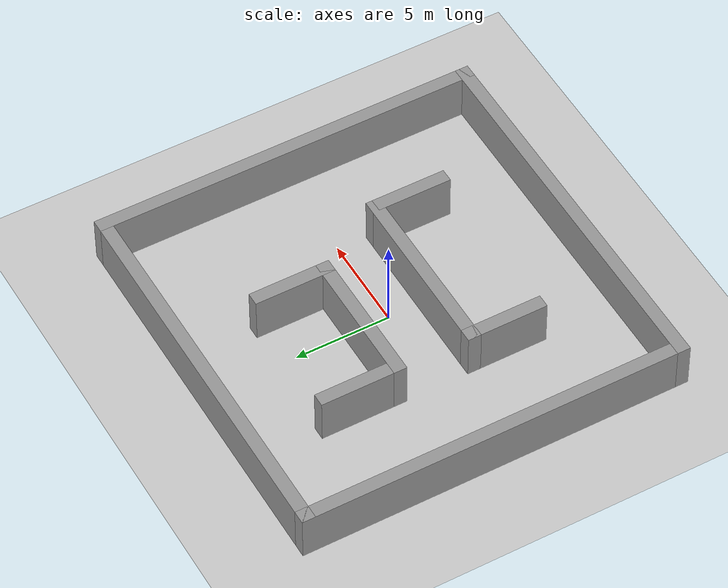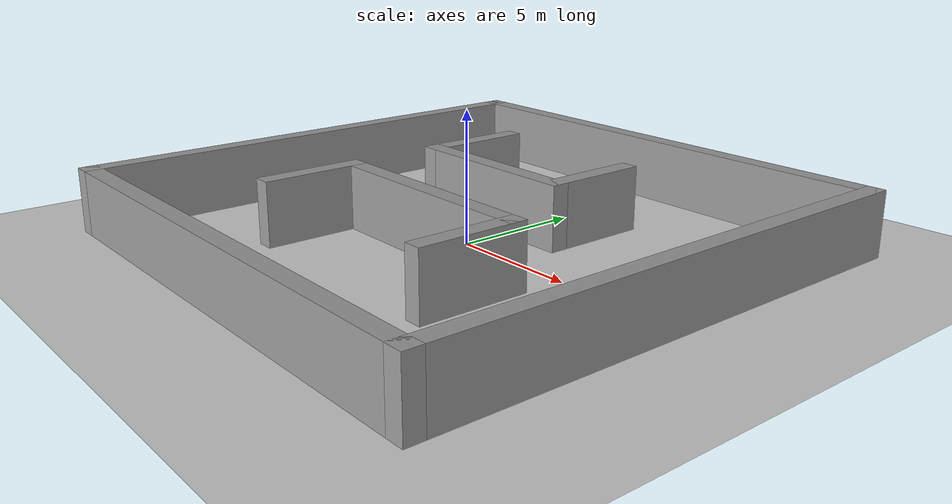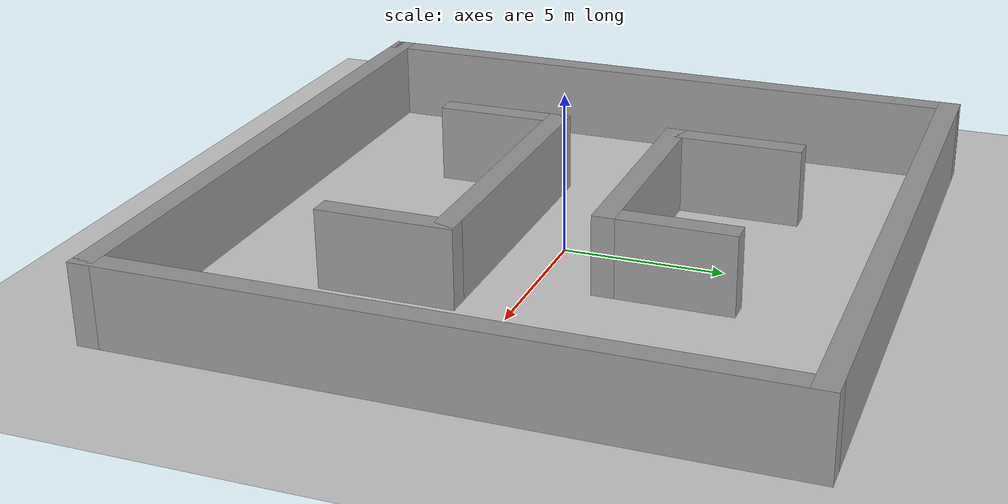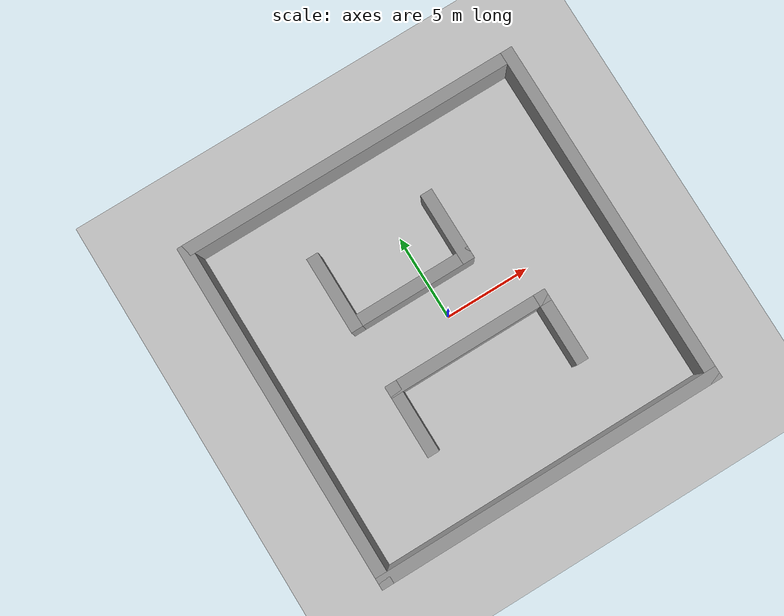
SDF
<sdf version="1.7">
 <world name="default">
  <light name="sun" type="directional">
   <pose>0 0 10 0 -0 0</pose>
   <diffuse>0.8 0.8 0.8 1</diffuse>
   <specular>0.2 0.2 0.2 1</specular>
   <attenuation>
    <range>1000</range>
    <constant>0.9</constant>
    <linear>0.01</linear>
    <quadratic>0.001</quadratic>
   </attenuation>
   <direction>-0.5 0.1 -0.9</direction>
   <spot><inner_angle>0</inner_angle><outer_angle>0</outer_angle><falloff>0</falloff></spot>
  </light>
  <model name="ground_plane">
   <static>1</static>
   <link name="link">
    <collision name="collision">
     <geometry><plane><normal>0 0 1</normal><size>100 100</size></plane></geometry>
     <surface><friction><ode><mu>100</mu><mu2>50</mu2></ode></friction></surface>
    </collision>
    <visual name="visual">
     <cast_shadows>0</cast_shadows>
     <geometry><plane><normal>0 0 1</normal><size>100 100</size></plane></geometry>
     <material>
      <script><uri>file://media/materials/scripts/gazebo.material</uri><name>Gazebo/Grey</name></script>
     </material>
    </visual>
   </link>
  </model>
  <gravity>0 0 -9.8</gravity>
  <magnetic_field>6e-06 2.3e-05 -4.2e-05</magnetic_field>
  <atmosphere type="adiabatic"/>
  <physics type="ode">
   <max_step_size>0.001</max_step_size>
   <real_time_factor>1</real_time_factor>
   <real_time_update_rate>1000</real_time_update_rate>
  </physics>
  <scene><ambient>0.4 0.4 0.4 1</ambient><background>0.7 0.7 0.7 1</background><shadows>1</shadows></scene>
  <spherical_coordinates>
   <surface_model>EARTH_WGS84</surface_model>
   <latitude_deg>0</latitude_deg>
   <longitude_deg>0</longitude_deg>
   <elevation>0</elevation>
   <heading_deg>0</heading_deg>
  </spherical_coordinates>
  <model name="demo07">
   <link name="Wall_0">
    <collision name="Wall_0_Collision">
     <geometry><box><size>20.7 0.7 2.5</size></box></geometry>
     <pose>0 0 1.25 0 -0 0</pose>
    </collision>
    <visual name="Wall_0_Visual">
     <pose>0 0 1.25 0 -0 0</pose>
     <geometry><box><size>20.7 0.7 2.5</size></box></geometry>
     <material>
      <script><uri>file://media/materials/scripts/gazebo.material</uri><name>Gazebo/Grey</name></script>
      <ambient>1 1 1 1</ambient>
     </material>
     <meta><layer>0</layer></meta>
    </visual>
    <pose>-10 0 0 0 -0 1.5708</pose>
   </link>
   <link name="Wall_17">
    <collision name="Wall_17_Collision">
     <geometry><box><size>4.55041 0.7 2.5</size></box></geometry>
     <pose>0 0 1.25 0 -0 0</pose>
    </collision>
    <visual name="Wall_17_Visual">
     <pose>0 0 1.25 0 -0 0</pose>
     <geometry><box><size>4.55041 0.7 2.5</size></box></geometry>
     <material>
      <script><uri>file://media/materials/scripts/gazebo.material</uri><name>Gazebo/Grey</name></script>
      <ambient>1 1 1 1</ambient>
     </material>
     <meta><layer>0</layer></meta>
    </visual>
    <pose>-4.498 4.025 0 0 -0 -1.5708</pose>
   </link>
   <link name="Wall_18">
    <collision name="Wall_18_Collision">
     <geometry><box><size>7.55018 0.7 2.5</size></box></geometry>
     <pose>0 0 1.25 0 -0 0</pose>
    </collision>
    <visual name="Wall_18_Visual">
     <pose>0 0 1.25 0 -0 0</pose>
     <geometry><box><size>7.55018 0.7 2.5</size></box></geometry>
     <material>
      <script><uri>file://media/materials/scripts/gazebo.material</uri><name>Gazebo/Grey</name></script>
      <ambient>1 1 1 1</ambient>
     </material>
     <meta><layer>0</layer></meta>
    </visual>
    <pose>-1.073 2.1 0 0 -0 0</pose>
   </link>
   <link name="Wall_19">
    <collision name="Wall_19_Collision">
     <geometry><box><size>4.29959 0.7 2.5</size></box></geometry>
     <pose>0 0 1.25 0 -0 0</pose>
    </collision>
    <visual name="Wall_19_Visual">
     <pose>0 0 1.25 0 -0 0</pose>
     <geometry><box><size>4.29959 0.7 2.5</size></box></geometry>
     <material>
      <script><uri>file://media/materials/scripts/gazebo.material</uri><name>Gazebo/Grey</name></script>
      <ambient>1 1 1 1</ambient>
     </material>
     <meta><layer>0</layer></meta>
    </visual>
    <pose>2.352 3.9 0 0 -0 1.5708</pose>
   </link>
   <link name="Wall_2">
    <collision name="Wall_2_Collision">
     <geometry><box><size>20.7 0.7 2.5</size></box></geometry>
     <pose>0 0 1.25 0 -0 0</pose>
    </collision>
    <visual name="Wall_2_Visual">
     <pose>0 0 1.25 0 -0 0</pose>
     <geometry><box><size>20.7 0.7 2.5</size></box></geometry>
     <material>
      <script><uri>file://media/materials/scripts/gazebo.material</uri><name>Gazebo/Grey</name></script>
      <ambient>1 1 1 1</ambient>
     </material>
     <meta><layer>0</layer></meta>
    </visual>
    <pose>0 10 0 0 -0 0</pose>
   </link>
   <link name="Wall_21">
    <collision name="Wall_21_Collision">
     <geometry><box><size>9.1 0 2.5</size></box></geometry>
     <pose>0 0 1.25 0 -0 0</pose>
    </collision>
    <visual name="Wall_21_Visual">
     <pose>0 0 1.25 0 -0 0</pose>
     <geometry><box><size>9.1 0 2.5</size></box></geometry>
     <material>
      <script><uri>file://media/materials/scripts/gazebo.material</uri><name>Gazebo/Grey</name></script>
      <ambient>1 1 1 1</ambient>
     </material>
     <meta><layer>0</layer></meta>
    </visual>
    <pose>0.052 -1.901 0 0 -0 0</pose>
   </link>
   <link name="Wall_22">
    <collision name="Wall_22_Collision">
     <geometry><box><size>4.30015 0.7 2.5</size></box></geometry>
     <pose>0 0 1.25 0 -0 0</pose>
    </collision>
    <visual name="Wall_22_Visual">
     <pose>0 0 1.25 0 -0 0</pose>
     <geometry><box><size>4.30015 0.7 2.5</size></box></geometry>
     <material>
      <script><uri>file://media/materials/scripts/gazebo.material</uri><name>Gazebo/Grey</name></script>
      <ambient>1 1 1 1</ambient>
     </material>
     <meta><layer>0</layer></meta>
    </visual>
    <pose>4.602 -3.701 0 0 -0 -1.5708</pose>
   </link>
   <link name="Wall_24">
    <collision name="Wall_24_Collision">
     <geometry><box><size>4.30015 0.7 2.5</size></box></geometry>
     <pose>0 0 1.25 0 -0 0</pose>
    </collision>
    <visual name="Wall_24_Visual">
     <pose>0 0 1.25 0 -0 0</pose>
     <geometry><box><size>4.30015 0.7 2.5</size></box></geometry>
     <material>
      <script><uri>file://media/materials/scripts/gazebo.material</uri><name>Gazebo/Grey</name></script>
      <ambient>1 1 1 1</ambient>
     </material>
     <meta><layer>0</layer></meta>
    </visual>
    <pose>-4.498 -3.701 0 0 -0 -1.5708</pose>
   </link>
   <link name="Wall_26">
    <collision name="Wall_26_Collision">
     <geometry><box><size>9.8 0.7 2.5</size></box></geometry>
     <pose>0 0 1.25 0 -0 0</pose>
    </collision>
    <visual name="Wall_26_Visual">
     <pose>0 0 1.25 0 -0 0</pose>
     <geometry><box><size>9.8 0.7 2.5</size></box></geometry>
     <material>
      <script><uri>file://media/materials/scripts/gazebo.material</uri><name>Gazebo/Grey</name></script>
      <ambient>1 1 1 1</ambient>
     </material>
     <meta><layer>0</layer></meta>
    </visual>
    <pose>0.052 -1.901 0 0 -0 0</pose>
   </link>
   <link name="Wall_4">
    <collision name="Wall_4_Collision">
     <geometry><box><size>20.7 0.7 2.5</size></box></geometry>
     <pose>0 0 1.25 0 -0 0</pose>
    </collision>
    <visual name="Wall_4_Visual">
     <pose>0 0 1.25 0 -0 0</pose>
     <geometry><box><size>20.7 0.7 2.5</size></box></geometry>
     <material>
      <script><uri>file://media/materials/scripts/gazebo.material</uri><name>Gazebo/Grey</name></script>
      <ambient>1 1 1 1</ambient>
     </material>
     <meta><layer>0</layer></meta>
    </visual>
    <pose>0 -10 0 0 -0 0</pose>
   </link>
   <link name="Wall_6">
    <collision name="Wall_6_Collision">
     <geometry><box><size>20.7001 0.7 2.5</size></box></geometry>
     <pose>0 0 1.25 0 -0 0</pose>
    </collision>
    <visual name="Wall_6_Visual">
     <pose>0 0 1.25 0 -0 0</pose>
     <geometry><box><size>20.7001 0.7 2.5</size></box></geometry>
     <material>
      <script><uri>file://media/materials/scripts/gazebo.material</uri><name>Gazebo/Grey</name></script>
      <ambient>1 1 1 1</ambient>
     </material>
     <meta><layer>0</layer></meta>
    </visual>
    <pose>10 0 0 0 -0 -1.5708</pose>
   </link>
   <static>1</static>
  </model>
 </world>
</sdf>
